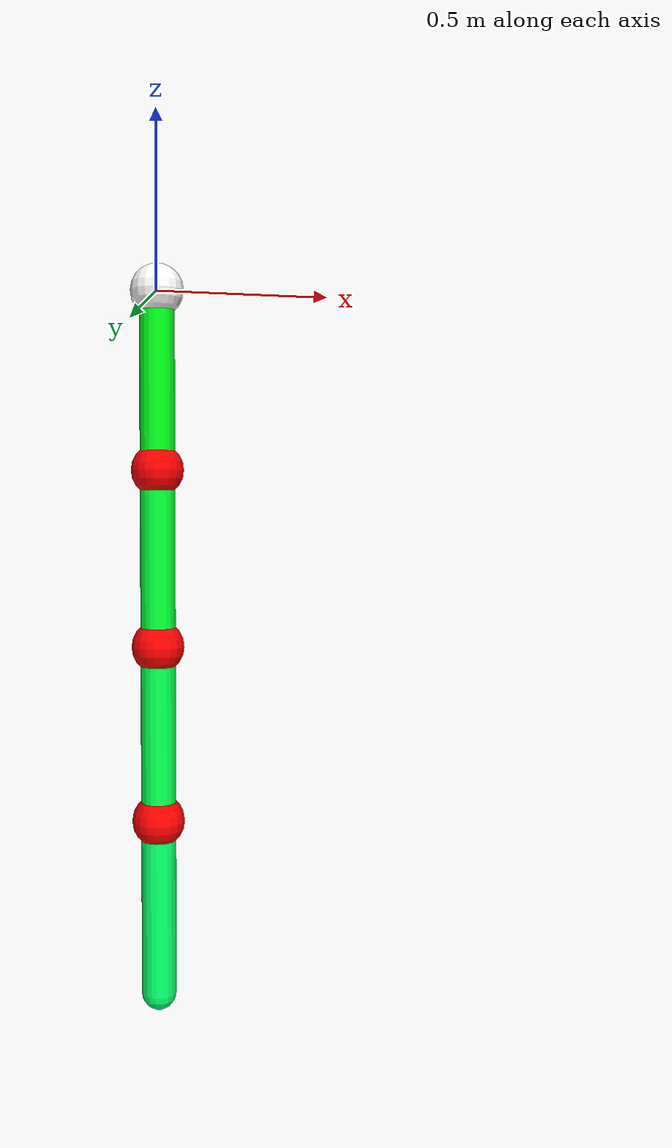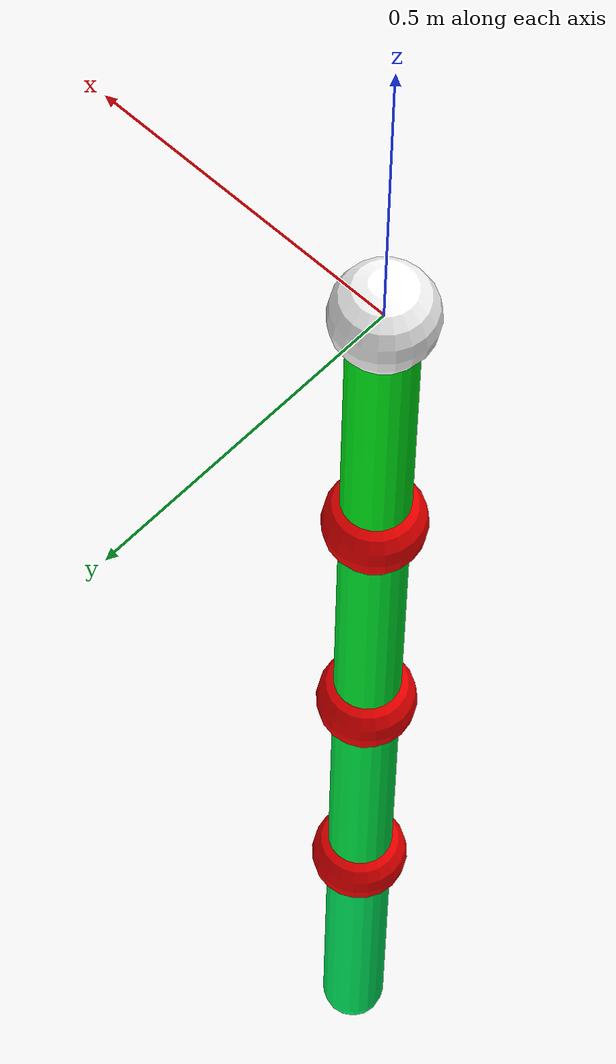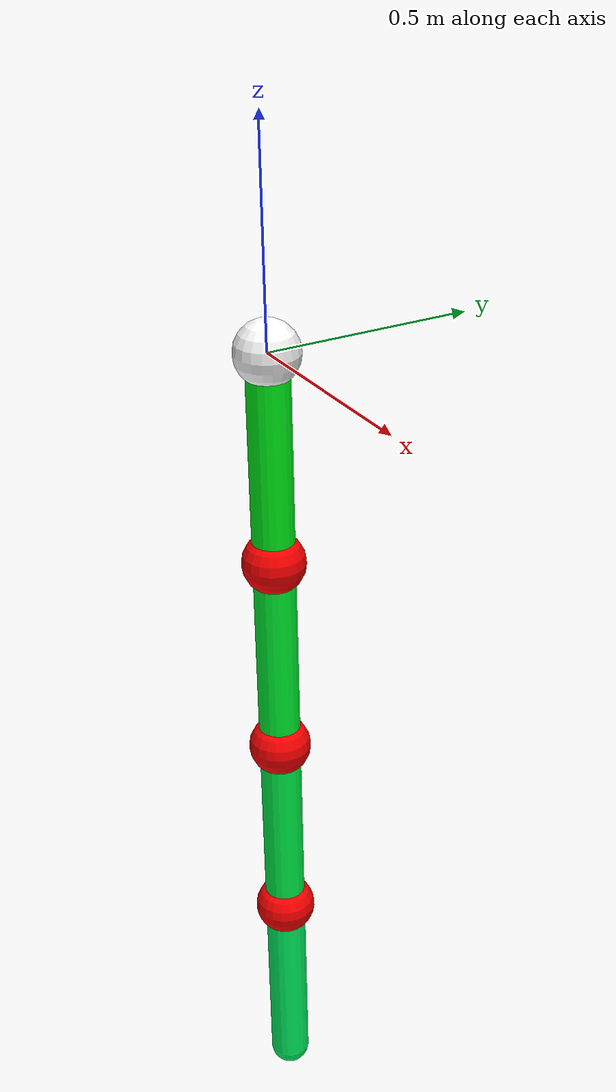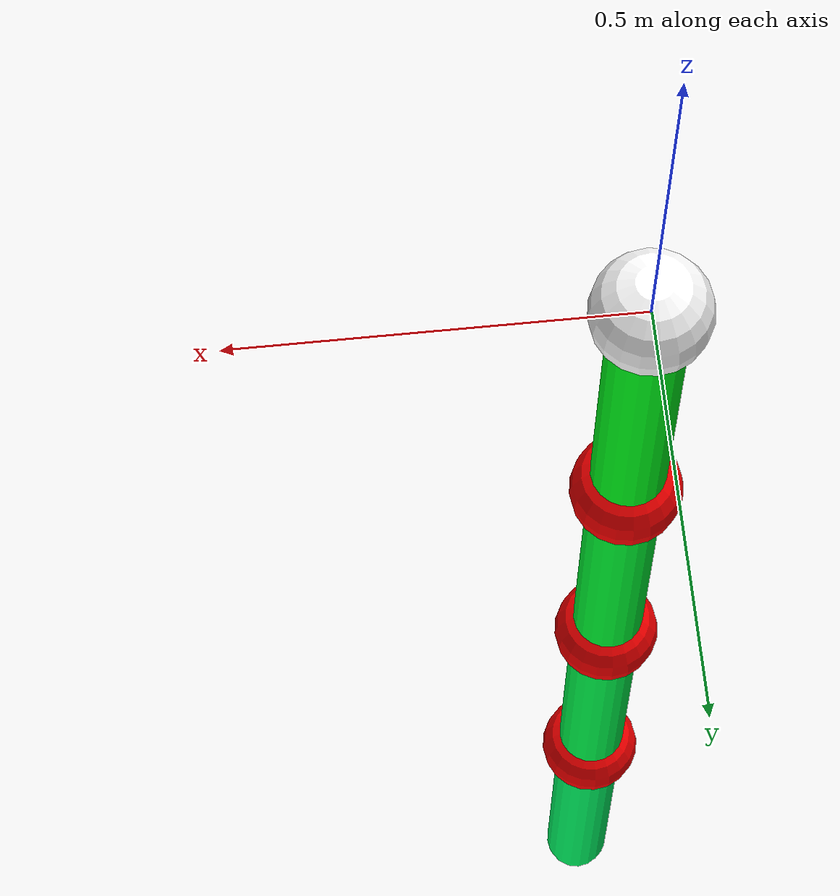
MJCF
<mujoco model="8_link_arm">
  <compiler angle="radian" coordinate="local" inertiafromgeom="true"/>
  <option collision="predefined" density="4000" integrator="RK4" timestep="0.01" viscosity="0.1"/>
  <default>
    <geom conaffinity="1" condim="1" contype="1" material="geom" rgba="0.8 0.6 .4 1"/>
    <joint armature='0.1'  />
  </default>
  <asset>
    <texture builtin="gradient" height="100" rgb1="1 1 1" rgb2="0 0 0" type="skybox" width="100"/>
    <texture builtin="flat" height="1278" mark="cross" markrgb="1 1 1" name="texgeom" random="0.01" rgb1="0.8 0.6 0.4" rgb2="0.8 0.6 0.4" type="cube" width="127"/>
    <material name="geom" texture="texgeom" texuniform="true"/>
  </asset>
  <worldbody>
    <light cutoff="100" diffuse="1 1 1" dir="-0 0 -1.3" directional="true" exponent="1" pos="1.1 0 1.3" specular=".1 .1 .1"/>
    <camera name="topcam" pos="0 0 2.5" zaxis="0 0 1" />
    <body name="body1" pos="0 0 0">
      <geom density="1" size="0.075" type="sphere" rgba="1 1 1 1"/>
      <geom density="1000" fromto="0 0 0.0 0 0 -0.5" size="0.05" type="capsule" rgba="0 1 0.1 1"/>
      <joint axis="0 1 0" name="motor1_rot" type="hinge"/>
      <body name="body2" pos="0 0 -0.5">
        <geom density="1" size="0.075" type="sphere" rgba="1 0 0 1"/>
        <geom density="1000" fromto="0 0 -0 0 0 -0.5" size="0.05" type="capsule" rgba="0 1 0.2 1"/>
        <joint axis="0 1 0" name="motor2_rot" type="hinge"/>
        <body name="body3" pos = "0 0 -0.5">
          <geom density="1" size="0.075" type="sphere" rgba="1 0 0 1"/>
          <geom density="1000" fromto="0 0 0.0 0 0 -0.5" size="0.05" type="capsule" rgba="0 1 0.3 1"/>
          <joint axis="0 1 0" name="motor3_rot" type="hinge"/>
            <body name="body4" pos = "0 0 -0.5">
            <geom density="1" size="0.075" type="sphere" rgba="1 0 0 1"/>
            <geom density="1000" fromto="0 0 0.0 0 0 -0.5" size="0.05" type="capsule" rgba="0 1 0.4 1"/>
            <joint axis="0 1 0" name="motor4_rot" type="hinge"/>
          </body>
        </body>
      </body>
    </body>
  </worldbody>
  <actuator>
    <motor ctrllimited="true" ctrlrange="-1 1" gear="100.0" joint="motor1_rot"/>
    <motor ctrllimited="true" ctrlrange="-1 1" gear="100.0" joint="motor2_rot"/>
    <motor ctrllimited="true" ctrlrange="-1 1" gear="100.0" joint="motor3_rot"/>
    <motor ctrllimited="true" ctrlrange="-1 1" gear="100.0" joint="motor4_rot"/>
  </actuator>
  <sensor>
    <jointpos name="motor1_position_sensor" joint="motor1_rot"/>
    <jointpos name="motor2_position_sensor" joint="motor2_rot"/>
    <jointpos name="motor3_position_sensor" joint="motor3_rot"/>
    <jointpos name="motor4_position_sensor" joint="motor4_rot"/>
    <jointvel name="motor1_velocity_sensor" joint="motor1_rot"/>
    <jointvel name="motor2_velocity_sensor" joint="motor2_rot"/>
    <jointvel name="motor3_velocity_sensor" joint="motor3_rot"/>
    <jointvel name="motor4_velocity_sensor" joint="motor4_rot"/>
  </sensor>
</mujoco>
